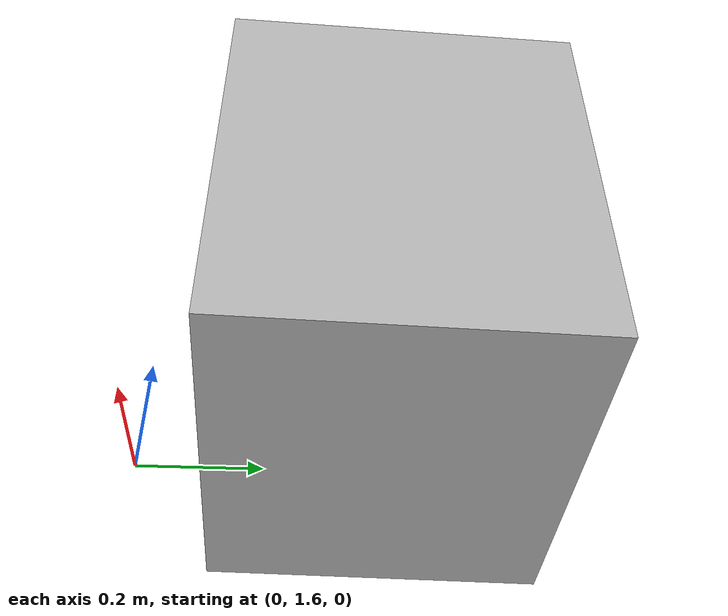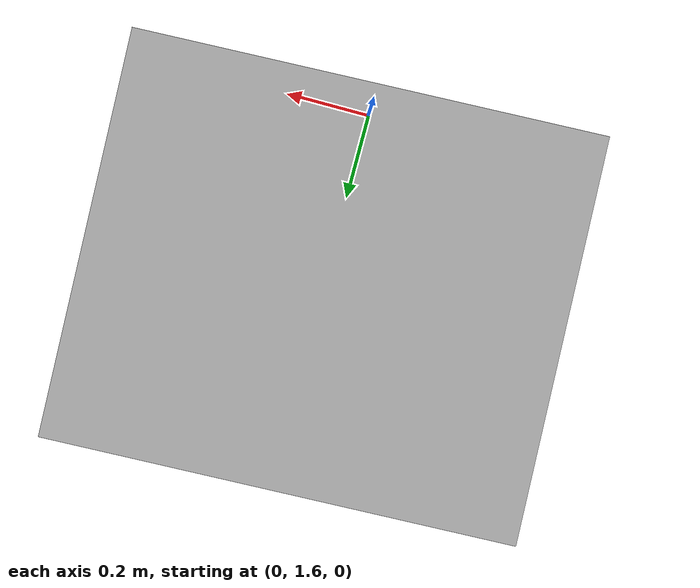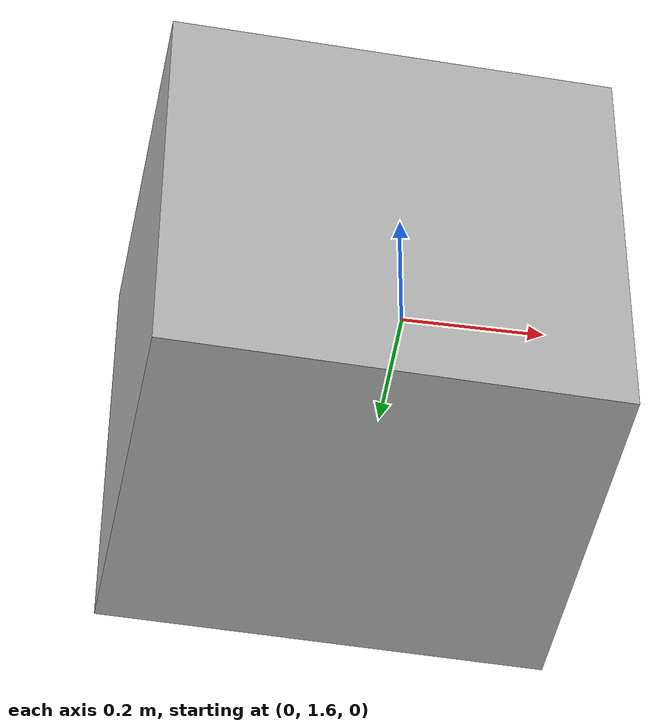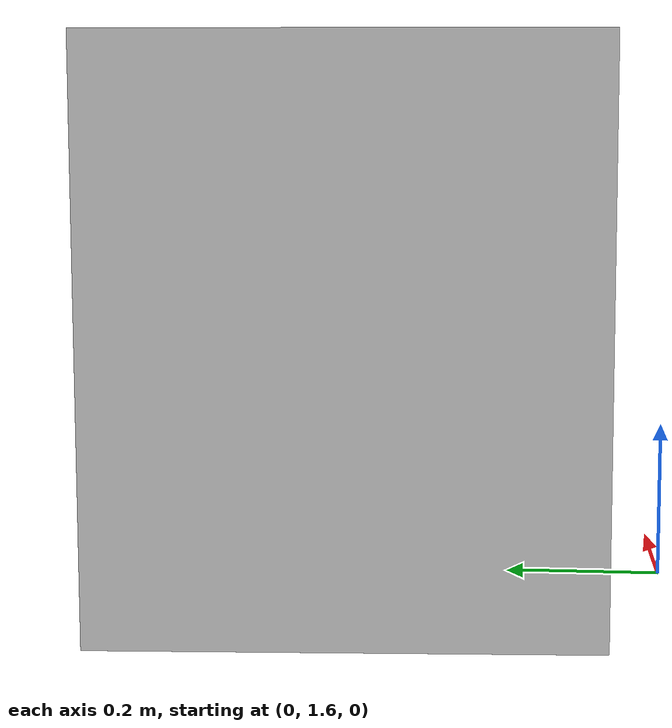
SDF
<?xml version="1.0" ?>
<sdf version="1.6">
   <model name="kuka_box">
    <static>true</static>
    <pose>0 2 0.35 0 0 -1.53</pose> <!-- Centered on ground, z = half height -->
    <link name="kuka_link">
        <collision name="collision">
      <geometry>
        <mesh>
          <uri>/home/marat/exchange_project_ws/src/models/ur5e_model_pkg/meshes/kuka_box/kuka_box.dae</uri>
        </mesh>
      </geometry>
        </collision>
        <visual name="visual">
      <geometry>
        <mesh>
          <uri>/home/marat/exchange_project_ws/src/models/ur5e_model_pkg/meshes/kuka_box/kuka_box.dae</uri>
        </mesh>
      </geometry>
        </visual>
    </link>
    </model>
</sdf>
